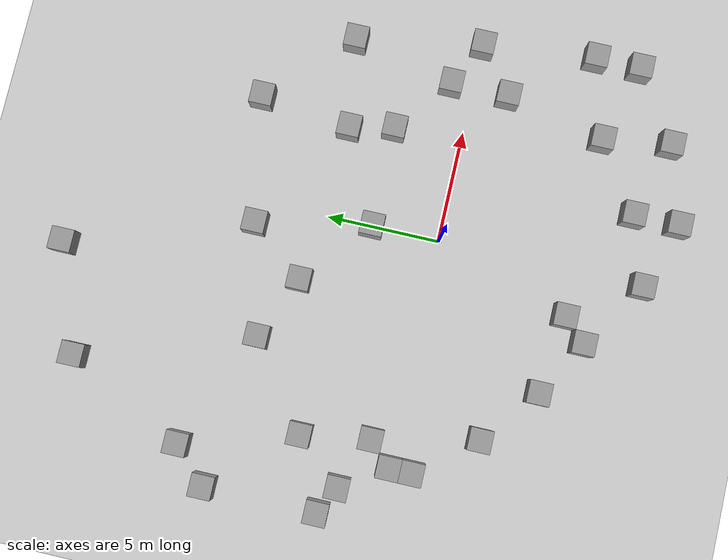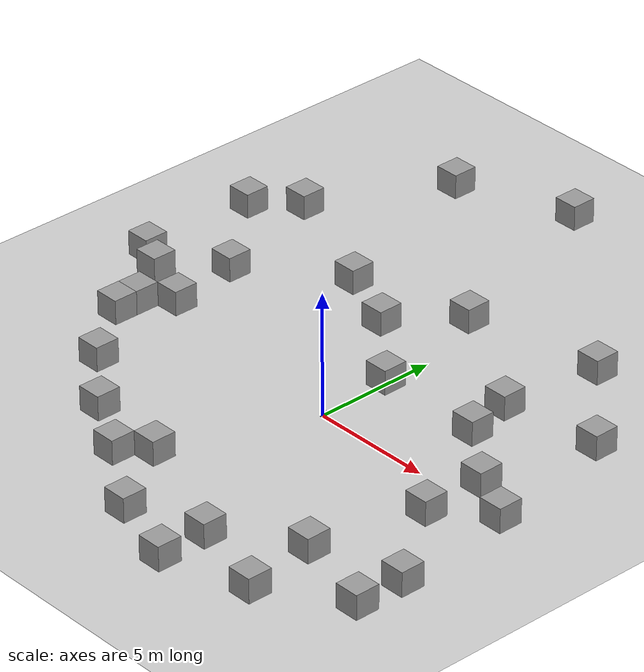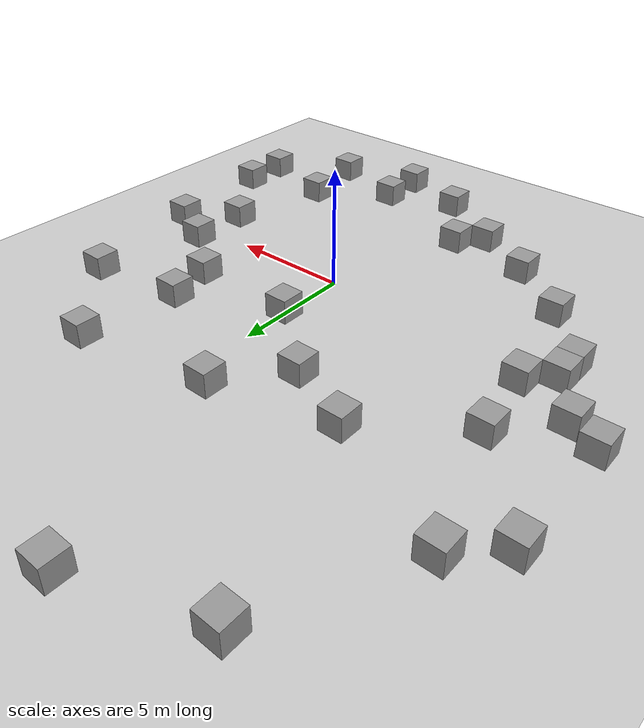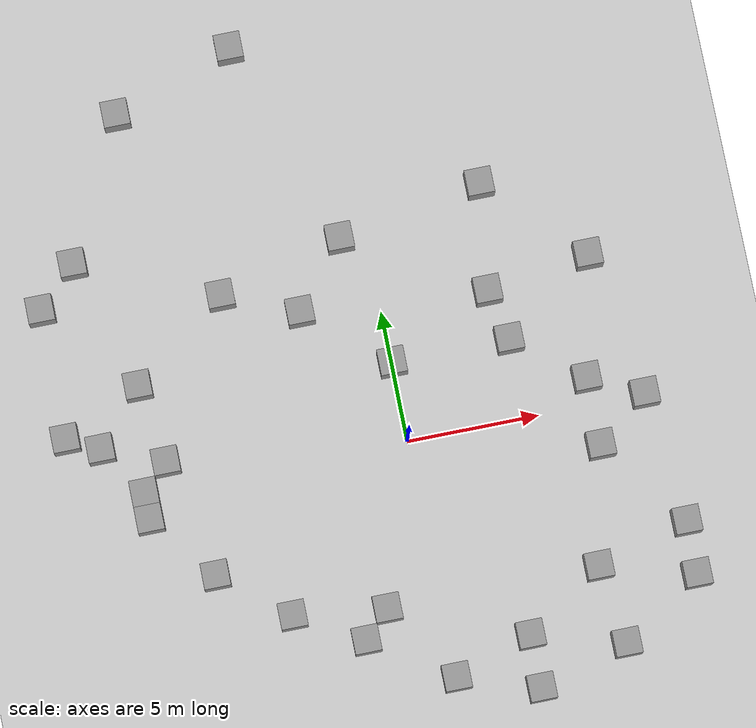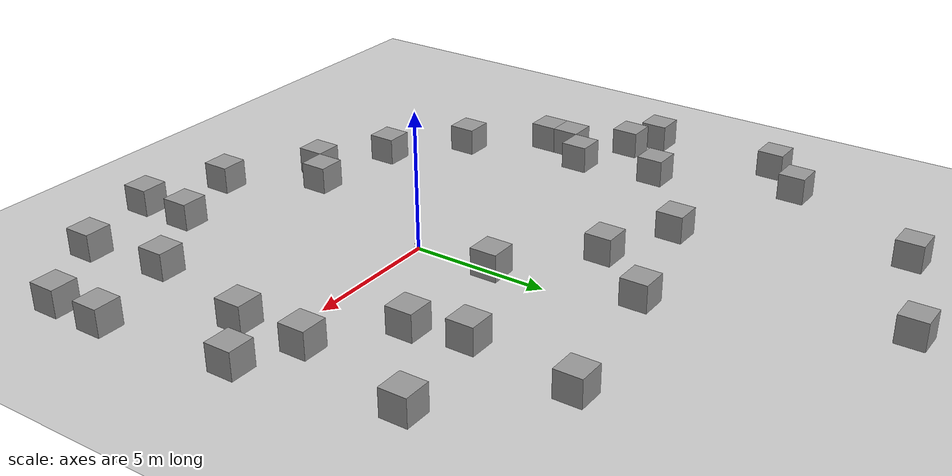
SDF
<sdf version="1.7">
 <world name="default">
  <light name="sun" type="directional">
   <pose>0 0 10 0 -0 0</pose>
   <diffuse>0.8 0.8 0.8 1</diffuse>
   <specular>0.2 0.2 0.2 1</specular>
   <attenuation>
    <range>1000</range>
    <constant>0.9</constant>
    <linear>0.01</linear>
    <quadratic>0.001</quadratic>
   </attenuation>
   <direction>-0.5 0.1 -0.9</direction>
   <spot><inner_angle>0</inner_angle><outer_angle>0</outer_angle><falloff>0</falloff></spot>
  </light>
  <model name="ground_plane">
   <static>1</static>
   <link name="link">
    <collision name="collision">
     <geometry><plane><normal>0 0 1</normal><size>100 100</size></plane></geometry>
     <surface>
      <contact><collide_bitmask>65535</collide_bitmask></contact>
      <friction><ode><mu>100</mu><mu2>50</mu2></ode></friction>
     </surface>
    </collision>
    <visual name="visual">
     <cast_shadows>0</cast_shadows>
     <geometry><plane><normal>0 0 1</normal><size>100 100</size></plane></geometry>
     <material>
      <script><uri>file://media/materials/scripts/gazebo.material</uri><name>Gazebo/Grey</name></script>
     </material>
    </visual>
   </link>
  </model>
  <gravity>0 0 -9.8</gravity>
  <magnetic_field>6e-06 2.3e-05 -4.2e-05</magnetic_field>
  <atmosphere type="adiabatic"/>
  <physics type="ode">
   <max_step_size>0.001</max_step_size>
   <real_time_factor>1</real_time_factor>
   <real_time_update_rate>1000</real_time_update_rate>
  </physics>
  <scene><ambient>0.4 0.4 0.4 1</ambient><background>0.7 0.7 0.7 1</background><shadows>1</shadows></scene>
  <audio><device>default</device></audio>
  <spherical_coordinates>
   <surface_model>EARTH_WGS84</surface_model>
   <latitude_deg>0</latitude_deg>
   <longitude_deg>0</longitude_deg>
   <elevation>0</elevation>
   <heading_deg>0</heading_deg>
  </spherical_coordinates>
  <model name="test_bot">
   <link name="base_link">
    <inertial>
     <pose>0.118143 0 0.083857 0 -0 0</pose>
     <mass>0.7</mass>
     <inertia>
      <ixx>0.00964782</ixx>
      <ixy>0</ixy>
      <ixz>0.000191086</ixz>
      <iyy>0.0097333</iyy>
      <iyz>0</iyz>
      <izz>0.0102105</izz>
     </inertia>
    </inertial>
    <collision name="base_link_fixed_joint_lump__chassis_collision">
     <pose>0.125 0 0.075 0 -0 0</pose>
     <geometry><box><size>0.3 0.3 0.15</size></box></geometry>
    </collision>
    <collision name="base_link_fixed_joint_lump__caster_wheel_collision_1">
     <pose>0.105 0 0 0 -0 0</pose>
     <geometry><sphere><radius>0.03</radius></sphere></geometry>
     <surface><friction><ode><mu>0.001</mu><mu2>0.001</mu2></ode></friction></surface>
    </collision>
    <collision name="base_link_fixed_joint_lump__laser_frame_collision_2">
     <pose>0.097 0 0.212 0 -0 0</pose>
     <geometry><cylinder><length>0.04</length><radius>0.05</radius></cylinder></geometry>
    </collision>
    <visual name="base_link_fixed_joint_lump__chassis_visual">
     <pose>0.065 0 0.035 0 -0 0</pose>
     <geometry><box><size>0.18 0.18 0.07</size></box></geometry>
     <material>
      <script><name>Gazebo/White</name><uri>file://media/materials/scripts/gazebo.material</uri></script>
     </material>
    </visual>
    <visual name="base_link_fixed_joint_lump__caster_wheel_visual_1">
     <pose>0.105 0 0 0 -0 0</pose>
     <geometry><sphere><radius>0.03</radius></sphere></geometry>
     <material>
      <script><name>Gazebo/Black</name><uri>file://media/materials/scripts/gazebo.material</uri></script>
     </material>
    </visual>
    <visual name="base_link_fixed_joint_lump__laser_frame_visual_2">
     <pose>0.097 0 0.212 0 -0 0</pose>
     <geometry><cylinder><length>0.04</length><radius>0.05</radius></cylinder></geometry>
     <material>
      <script><name>Gazebo/Black</name><uri>file://media/materials/scripts/gazebo.material</uri></script>
     </material>
    </visual>
    <visual name="base_link_fixed_joint_lump__laser_frame_visual_3">
     <pose>0.097 0 0.162 0 -0 0</pose>
     <geometry><cylinder><length>0.1</length><radius>0.01</radius></cylinder></geometry>
     <material>
      <script><name>Gazebo/Black</name><uri>file://media/materials/scripts/gazebo.material</uri></script>
     </material>
    </visual>
    <sensor name="laser" type="ray">
     <visualize>1</visualize>
     <update_rate>30</update_rate>
     <ray>
      <scan>
       <horizontal>
        <samples>360</samples>
        <min_angle>-3.14</min_angle>
        <max_angle>3.14</max_angle>
        <resolution>1</resolution>
       </horizontal>
       <vertical><samples>1</samples><min_angle>0</min_angle><max_angle>0</max_angle></vertical>
      </scan>
      <range><min>0.3</min><max>25</max></range>
     </ray>
     <plugin name="laser_controller" filename="libgazebo_ros_ray_sensor.so">
      <ros><argument>~/out:=scan</argument></ros>
      <output_type>sensor_msgs/LaserScan</output_type>
      <frame_name>laser_frame</frame_name>
     </plugin>
     <pose>0.097 0 0.212 0 -0 0</pose>
    </sensor>
   </link>
   <joint name="left_wheel_joint" type="revolute">
    <pose relative_to="base_link">0 0.105 0 -1.5708 0 0</pose>
    <parent>base_link</parent>
    <child>left_wheel</child>
    <axis>
     <xyz>0 0 1</xyz>
     <limit><lower>-1e+16</lower><upper>1e+16</upper></limit>
     <dynamics><spring_reference>0</spring_reference><spring_stiffness>0</spring_stiffness></dynamics>
    </axis>
   </joint>
   <link name="left_wheel">
    <pose relative_to="left_wheel_joint">0 0 0 0 -0 0</pose>
    <inertial>
     <mass>0.1</mass>
     <inertia>
      <ixx>2.77083e-05</ixx>
      <ixy>0</ixy>
      <ixz>0</ixz>
      <iyy>2.77083e-05</iyy>
      <iyz>0</iyz>
      <izz>4.5e-05</izz>
     </inertia>
    </inertial>
    <collision name="left_wheel_collision">
     <geometry><cylinder><length>0.025</length><radius>0.03</radius></cylinder></geometry>
    </collision>
    <visual name="left_wheel_visual">
     <geometry><cylinder><length>0.025</length><radius>0.03</radius></cylinder></geometry>
     <material>
      <script><name>Gazebo/Blue</name><uri>file://media/materials/scripts/gazebo.material</uri></script>
     </material>
    </visual>
   </link>
   <joint name="right_wheel_joint" type="revolute">
    <pose relative_to="base_link">0 -0.105 0 1.5708 -0 0</pose>
    <parent>base_link</parent>
    <child>right_wheel</child>
    <axis>
     <xyz>0 0 -1</xyz>
     <limit><lower>-1e+16</lower><upper>1e+16</upper></limit>
     <dynamics><spring_reference>0</spring_reference><spring_stiffness>0</spring_stiffness></dynamics>
    </axis>
   </joint>
   <link name="right_wheel">
    <pose relative_to="right_wheel_joint">0 0 0 0 -0 0</pose>
    <inertial>
     <mass>0.1</mass>
     <inertia>
      <ixx>2.77083e-05</ixx>
      <ixy>0</ixy>
      <ixz>0</ixz>
      <iyy>2.77083e-05</iyy>
      <iyz>0</iyz>
      <izz>4.5e-05</izz>
     </inertia>
    </inertial>
    <collision name="right_wheel_collision">
     <geometry><cylinder><length>0.025</length><radius>0.03</radius></cylinder></geometry>
    </collision>
    <visual name="right_wheel_visual">
     <geometry><cylinder><length>0.025</length><radius>0.03</radius></cylinder></geometry>
     <material>
      <script><name>Gazebo/Blue</name><uri>file://media/materials/scripts/gazebo.material</uri></script>
     </material>
    </visual>
   </link>
   <static>0</static>
   <plugin name="gazebo_ros2_control" filename="libgazebo_ros2_control.so">
    <parameters>/home/pritesh/club_ws/install/Test_bot/share/Test_bot/config/my_controllers.yaml</parameters>
   </plugin>
   <pose>0.018447 0.000506 0.030009 -6e-05 9e-05 -0.020323</pose>
  </model>
  <model name="unit_box">
   <pose>-11.2927 1.93514 0.499995 0 1e-05 0</pose>
   <link name="link">
    <inertial>
     <mass>1</mass>
     <inertia>
      <ixx>0.166667</ixx>
      <ixy>0</ixy>
      <ixz>0</ixz>
      <iyy>0.166667</iyy>
      <iyz>0</iyz>
      <izz>0.166667</izz>
     </inertia>
    </inertial>
    <collision name="collision"><geometry><box><size>1 1 1</size></box></geometry></collision>
    <visual name="visual">
     <geometry><box><size>1 1 1</size></box></geometry>
     <material>
      <script><name>Gazebo/Grey</name><uri>file://media/materials/scripts/gazebo.material</uri></script>
     </material>
    </visual>
   </link>
  </model>
  <model name="unit_box_0">
   <pose>-12.4999 7.51224 0.499995 -1e-05 -0 -0</pose>
   <link name="link">
    <inertial>
     <mass>1</mass>
     <inertia>
      <ixx>0.166667</ixx>
      <ixy>0</ixy>
      <ixz>0</ixz>
      <iyy>0.166667</iyy>
      <iyz>0</iyz>
      <izz>0.166667</izz>
     </inertia>
    </inertial>
    <collision name="collision"><geometry><box><size>1 1 1</size></box></geometry></collision>
    <visual name="visual">
     <geometry><box><size>1 1 1</size></box></geometry>
     <material>
      <script><name>Gazebo/Grey</name><uri>file://media/materials/scripts/gazebo.material</uri></script>
     </material>
    </visual>
   </link>
  </model>
  <model name="unit_box_1">
   <pose>-3.66472 15.9303 0.499995 0 1e-05 0</pose>
   <link name="link">
    <inertial>
     <mass>1</mass>
     <inertia>
      <ixx>0.166667</ixx>
      <ixy>0</ixy>
      <ixz>0</ixz>
      <iyy>0.166667</iyy>
      <iyz>0</iyz>
      <izz>0.166667</izz>
     </inertia>
    </inertial>
    <collision name="collision"><geometry><box><size>1 1 1</size></box></geometry></collision>
    <visual name="visual">
     <geometry><box><size>1 1 1</size></box></geometry>
     <material>
      <script><name>Gazebo/Grey</name><uri>file://media/materials/scripts/gazebo.material</uri></script>
     </material>
    </visual>
   </link>
  </model>
  <model name="unit_box_2">
   <pose>-8.33137 14.2576 0.499995 -1e-05 -0 -0</pose>
   <link name="link">
    <inertial>
     <mass>1</mass>
     <inertia>
      <ixx>0.166667</ixx>
      <ixy>0</ixy>
      <ixz>0</ixz>
      <iyy>0.166667</iyy>
      <iyz>0</iyz>
      <izz>0.166667</izz>
     </inertia>
    </inertial>
    <collision name="collision"><geometry><box><size>1 1 1</size></box></geometry></collision>
    <visual name="visual">
     <geometry><box><size>1 1 1</size></box></geometry>
     <material>
      <script><name>Gazebo/Grey</name><uri>file://media/materials/scripts/gazebo.material</uri></script>
     </material>
    </visual>
   </link>
  </model>
  <model name="unit_box_3">
   <pose>-5.79587 6.74365 0.499995 0 1e-05 0</pose>
   <link name="link">
    <inertial>
     <mass>1</mass>
     <inertia>
      <ixx>0.166667</ixx>
      <ixy>0</ixy>
      <ixz>0</ixz>
      <iyy>0.166667</iyy>
      <iyz>0</iyz>
      <izz>0.166667</izz>
     </inertia>
    </inertial>
    <collision name="collision"><geometry><box><size>1 1 1</size></box></geometry></collision>
    <visual name="visual">
     <geometry><box><size>1 1 1</size></box></geometry>
     <material>
      <script><name>Gazebo/Grey</name><uri>file://media/materials/scripts/gazebo.material</uri></script>
     </material>
    </visual>
   </link>
  </model>
  <model name="unit_box_4">
   <pose>4.04052 4.95338 0.499995 -1e-05 -0 -0</pose>
   <link name="link">
    <inertial>
     <mass>1</mass>
     <inertia>
      <ixx>0.166667</ixx>
      <ixy>0</ixy>
      <ixz>0</ixz>
      <iyy>0.166667</iyy>
      <iyz>0</iyz>
      <izz>0.166667</izz>
     </inertia>
    </inertial>
    <collision name="collision"><geometry><box><size>1 1 1</size></box></geometry></collision>
    <visual name="visual">
     <geometry><box><size>1 1 1</size></box></geometry>
     <material>
      <script><name>Gazebo/Grey</name><uri>file://media/materials/scripts/gazebo.material</uri></script>
     </material>
    </visual>
   </link>
  </model>
  <model name="unit_box_4_clone">
   <pose>7 1.00001 0.499995 0 -1e-05 0</pose>
   <link name="link">
    <inertial>
     <mass>1</mass>
     <inertia>
      <ixx>0.166667</ixx>
      <ixy>0</ixy>
      <ixz>0</ixz>
      <iyy>0.166667</iyy>
      <iyz>0</iyz>
      <izz>0.166667</izz>
     </inertia>
    </inertial>
    <collision name="collision"><geometry><box><size>1 1 1</size></box></geometry></collision>
    <visual name="visual">
     <geometry><box><size>1 1 1</size></box></geometry>
     <material>
      <script><name>Gazebo/Grey</name><uri>file://media/materials/scripts/gazebo.material</uri></script>
     </material>
    </visual>
   </link>
  </model>
  <model name="unit_box_4_clone_0">
   <pose>7 -1.57019 0.499995 -1e-05 -0 -0</pose>
   <link name="link">
    <inertial>
     <mass>1</mass>
     <inertia>
      <ixx>0.166667</ixx>
      <ixy>0</ixy>
      <ixz>0</ixz>
      <iyy>0.166667</iyy>
      <iyz>0</iyz>
      <izz>0.166667</izz>
     </inertia>
    </inertial>
    <collision name="collision"><geometry><box><size>1 1 1</size></box></geometry></collision>
    <visual name="visual">
     <geometry><box><size>1 1 1</size></box></geometry>
     <material>
      <script><name>Gazebo/Grey</name><uri>file://media/materials/scripts/gazebo.material</uri></script>
     </material>
    </visual>
   </link>
  </model>
  <model name="unit_box_4_clone_1">
   <pose>6 -6 0.499995 0 1e-05 0</pose>
   <link name="link">
    <inertial>
     <mass>1</mass>
     <inertia>
      <ixx>0.166667</ixx>
      <ixy>0</ixy>
      <ixz>0</ixz>
      <iyy>0.166667</iyy>
      <iyz>0</iyz>
      <izz>0.166667</izz>
     </inertia>
    </inertial>
    <collision name="collision"><geometry><box><size>1 1 1</size></box></geometry></collision>
    <visual name="visual">
     <geometry><box><size>1 1 1</size></box></geometry>
     <material>
      <script><name>Gazebo/Grey</name><uri>file://media/materials/scripts/gazebo.material</uri></script>
     </material>
    </visual>
   </link>
  </model>
  <model name="unit_box_4_clone_2">
   <pose>3 -9.99999 0.499995 -1e-05 0 0</pose>
   <link name="link">
    <inertial>
     <mass>1</mass>
     <inertia>
      <ixx>0.166667</ixx>
      <ixy>0</ixy>
      <ixz>0</ixz>
      <iyy>0.166667</iyy>
      <iyz>0</iyz>
      <izz>0.166667</izz>
     </inertia>
    </inertial>
    <collision name="collision"><geometry><box><size>1 1 1</size></box></geometry></collision>
    <visual name="visual">
     <geometry><box><size>1 1 1</size></box></geometry>
     <material>
      <script><name>Gazebo/Grey</name><uri>file://media/materials/scripts/gazebo.material</uri></script>
     </material>
    </visual>
   </link>
  </model>
  <model name="unit_box_4_clone_3">
   <pose>-5e-06 -9 0.499995 0 -1e-05 0</pose>
   <link name="link">
    <inertial>
     <mass>1</mass>
     <inertia>
      <ixx>0.166667</ixx>
      <ixy>0</ixy>
      <ixz>0</ixz>
      <iyy>0.166667</iyy>
      <iyz>0</iyz>
      <izz>0.166667</izz>
     </inertia>
    </inertial>
    <collision name="collision"><geometry><box><size>1 1 1</size></box></geometry></collision>
    <visual name="visual">
     <geometry><box><size>1 1 1</size></box></geometry>
     <material>
      <script><name>Gazebo/Grey</name><uri>file://media/materials/scripts/gazebo.material</uri></script>
     </material>
    </visual>
   </link>
  </model>
  <model name="unit_box_4_clone_4">
   <pose>-3 -6.99999 0.499995 -1e-05 -0 -0</pose>
   <link name="link">
    <inertial>
     <mass>1</mass>
     <inertia>
      <ixx>0.166667</ixx>
      <ixy>0</ixy>
      <ixz>0</ixz>
      <iyy>0.166667</iyy>
      <iyz>0</iyz>
      <izz>0.166667</izz>
     </inertia>
    </inertial>
    <collision name="collision"><geometry><box><size>1 1 1</size></box></geometry></collision>
    <visual name="visual">
     <geometry><box><size>1 1 1</size></box></geometry>
     <material>
      <script><name>Gazebo/Grey</name><uri>file://media/materials/scripts/gazebo.material</uri></script>
     </material>
    </visual>
   </link>
  </model>
  <model name="unit_box_4_clone_5">
   <pose>-5.49369 -5.56154 0.499995 0 1e-05 0</pose>
   <link name="link">
    <inertial>
     <mass>1</mass>
     <inertia>
      <ixx>0.166667</ixx>
      <ixy>0</ixy>
      <ixz>0</ixz>
      <iyy>0.166667</iyy>
      <iyz>0</iyz>
      <izz>0.166667</izz>
     </inertia>
    </inertial>
    <collision name="collision"><geometry><box><size>1 1 1</size></box></geometry></collision>
    <visual name="visual">
     <geometry><box><size>1 1 1</size></box></geometry>
     <material>
      <script><name>Gazebo/Grey</name><uri>file://media/materials/scripts/gazebo.material</uri></script>
     </material>
    </visual>
   </link>
  </model>
  <model name="unit_box_4_clone_6">
   <pose>-8 -3.53379 0.499995 -1e-05 0 0</pose>
   <link name="link">
    <inertial>
     <mass>1</mass>
     <inertia>
      <ixx>0.166667</ixx>
      <ixy>0</ixy>
      <ixz>0</ixz>
      <iyy>0.166667</iyy>
      <iyz>0</iyz>
      <izz>0.166667</izz>
     </inertia>
    </inertial>
    <collision name="collision"><geometry><box><size>1 1 1</size></box></geometry></collision>
    <visual name="visual">
     <geometry><box><size>1 1 1</size></box></geometry>
     <material>
      <script><name>Gazebo/Grey</name><uri>file://media/materials/scripts/gazebo.material</uri></script>
     </material>
    </visual>
   </link>
  </model>
  <model name="unit_box_4_clone_7">
   <pose>-10 -1e-06 0.499995 0 1e-05 5e-06</pose>
   <link name="link">
    <inertial>
     <mass>1</mass>
     <inertia>
      <ixx>0.166667</ixx>
      <ixy>0</ixy>
      <ixz>0</ixz>
      <iyy>0.166667</iyy>
      <iyz>0</iyz>
      <izz>0.166667</izz>
     </inertia>
    </inertial>
    <collision name="collision"><geometry><box><size>1 1 1</size></box></geometry></collision>
    <visual name="visual">
     <geometry><box><size>1 1 1</size></box></geometry>
     <material>
      <script><name>Gazebo/Grey</name><uri>file://media/materials/scripts/gazebo.material</uri></script>
     </material>
    </visual>
   </link>
  </model>
  <model name="unit_box_4_clone_8">
   <pose>-9.00001 1 0.499995 0 -1e-05 -1.1e-05</pose>
   <link name="link">
    <inertial>
     <mass>1</mass>
     <inertia>
      <ixx>0.166667</ixx>
      <ixy>0</ixy>
      <ixz>0</ixz>
      <iyy>0.166667</iyy>
      <iyz>0</iyz>
      <izz>0.166667</izz>
     </inertia>
    </inertial>
    <collision name="collision"><geometry><box><size>1 1 1</size></box></geometry></collision>
    <visual name="visual">
     <geometry><box><size>1 1 1</size></box></geometry>
     <material>
      <script><name>Gazebo/Grey</name><uri>file://media/materials/scripts/gazebo.material</uri></script>
     </material>
    </visual>
   </link>
  </model>
  <model name="unit_box_4_clone_9">
   <pose>-3 5.54411 0.499995 0 1e-05 0</pose>
   <link name="link">
    <inertial>
     <mass>1</mass>
     <inertia>
      <ixx>0.166667</ixx>
      <ixy>0</ixy>
      <ixz>0</ixz>
      <iyy>0.166667</iyy>
      <iyz>0</iyz>
      <izz>0.166667</izz>
     </inertia>
    </inertial>
    <collision name="collision"><geometry><box><size>1 1 1</size></box></geometry></collision>
    <visual name="visual">
     <geometry><box><size>1 1 1</size></box></geometry>
     <material>
      <script><name>Gazebo/Grey</name><uri>file://media/materials/scripts/gazebo.material</uri></script>
     </material>
    </visual>
   </link>
  </model>
  <model name="unit_box_4_clone_10">
   <pose>-1 8.00001 0.499995 -1e-05 0 0</pose>
   <link name="link">
    <inertial>
     <mass>1</mass>
     <inertia>
      <ixx>0.166667</ixx>
      <ixy>0</ixy>
      <ixz>0</ixz>
      <iyy>0.166667</iyy>
      <iyz>0</iyz>
      <izz>0.166667</izz>
     </inertia>
    </inertial>
    <collision name="collision"><geometry><box><size>1 1 1</size></box></geometry></collision>
    <visual name="visual">
     <geometry><box><size>1 1 1</size></box></geometry>
     <material>
      <script><name>Gazebo/Grey</name><uri>file://media/materials/scripts/gazebo.material</uri></script>
     </material>
    </visual>
   </link>
  </model>
  <model name="unit_box_4_clone_11">
   <pose>4.55814 9 0.499995 0 -1e-05 0</pose>
   <link name="link">
    <inertial>
     <mass>1</mass>
     <inertia>
      <ixx>0.166667</ixx>
      <ixy>0</ixy>
      <ixz>0</ixz>
      <iyy>0.166667</iyy>
      <iyz>0</iyz>
      <izz>0.166667</izz>
     </inertia>
    </inertial>
    <collision name="collision"><geometry><box><size>1 1 1</size></box></geometry></collision>
    <visual name="visual">
     <geometry><box><size>1 1 1</size></box></geometry>
     <material>
      <script><name>Gazebo/Grey</name><uri>file://media/materials/scripts/gazebo.material</uri></script>
     </material>
    </visual>
   </link>
  </model>
  <model name="unit_box_4_clone_12">
   <pose>-0 3.00001 0.499995 -1e-05 -0 -0</pose>
   <link name="link">
    <inertial>
     <mass>1</mass>
     <inertia>
      <ixx>0.166667</ixx>
      <ixy>0</ixy>
      <ixz>0</ixz>
      <iyy>0.166667</iyy>
      <iyz>0</iyz>
      <izz>0.166667</izz>
     </inertia>
    </inertial>
    <collision name="collision"><geometry><box><size>1 1 1</size></box></geometry></collision>
    <visual name="visual">
     <geometry><box><size>1 1 1</size></box></geometry>
     <material>
      <script><name>Gazebo/Grey</name><uri>file://media/materials/scripts/gazebo.material</uri></script>
     </material>
    </visual>
   </link>
  </model>
  <model name="unit_box_4_clone_13">
   <pose>4.46258 3.00001 0.499995 -1e-05 0 0</pose>
   <link name="link">
    <inertial>
     <mass>1</mass>
     <inertia>
      <ixx>0.166667</ixx>
      <ixy>0</ixy>
      <ixz>0</ixz>
      <iyy>0.166667</iyy>
      <iyz>0</iyz>
      <izz>0.166667</izz>
     </inertia>
    </inertial>
    <collision name="collision"><geometry><box><size>1 1 1</size></box></geometry></collision>
    <visual name="visual">
     <geometry><box><size>1 1 1</size></box></geometry>
     <material>
      <script><name>Gazebo/Grey</name><uri>file://media/materials/scripts/gazebo.material</uri></script>
     </material>
    </visual>
   </link>
  </model>
  <model name="unit_box_4_clone_14">
   <pose>8 5.55044 0.499995 0 -1e-05 0</pose>
   <link name="link">
    <inertial>
     <mass>1</mass>
     <inertia>
      <ixx>0.166667</ixx>
      <ixy>0</ixy>
      <ixz>0</ixz>
      <iyy>0.166667</iyy>
      <iyz>0</iyz>
      <izz>0.166667</izz>
     </inertia>
    </inertial>
    <collision name="collision"><geometry><box><size>1 1 1</size></box></geometry></collision>
    <visual name="visual">
     <geometry><box><size>1 1 1</size></box></geometry>
     <material>
      <script><name>Gazebo/Grey</name><uri>file://media/materials/scripts/gazebo.material</uri></script>
     </material>
    </visual>
   </link>
  </model>
  <model name="unit_box_4_clone_15">
   <pose>9.54027 -4.99999 0.499995 -1e-05 -0 -0</pose>
   <link name="link">
    <inertial>
     <mass>1</mass>
     <inertia>
      <ixx>0.166667</ixx>
      <ixy>0</ixy>
      <ixz>0</ixz>
      <iyy>0.166667</iyy>
      <iyz>0</iyz>
      <izz>0.166667</izz>
     </inertia>
    </inertial>
    <collision name="collision"><geometry><box><size>1 1 1</size></box></geometry></collision>
    <visual name="visual">
     <geometry><box><size>1 1 1</size></box></geometry>
     <material>
      <script><name>Gazebo/Grey</name><uri>file://media/materials/scripts/gazebo.material</uri></script>
     </material>
    </visual>
   </link>
  </model>
  <model name="unit_box_4_clone_16">
   <pose>6.42773 -8.99999 0.499995 -1e-05 0 0</pose>
   <link name="link">
    <inertial>
     <mass>1</mass>
     <inertia>
      <ixx>0.166667</ixx>
      <ixy>0</ixy>
      <ixz>0</ixz>
      <iyy>0.166667</iyy>
      <iyz>0</iyz>
      <izz>0.166667</izz>
     </inertia>
    </inertial>
    <collision name="collision"><geometry><box><size>1 1 1</size></box></geometry></collision>
    <visual name="visual">
     <geometry><box><size>1 1 1</size></box></geometry>
     <material>
      <script><name>Gazebo/Grey</name><uri>file://media/materials/scripts/gazebo.material</uri></script>
     </material>
    </visual>
   </link>
  </model>
  <model name="unit_box_4_clone_17">
   <pose>3 -7.99999 0.499995 -1e-05 -0 -0</pose>
   <link name="link">
    <inertial>
     <mass>1</mass>
     <inertia>
      <ixx>0.166667</ixx>
      <ixy>0</ixy>
      <ixz>0</ixz>
      <iyy>0.166667</iyy>
      <iyz>0</iyz>
      <izz>0.166667</izz>
     </inertia>
    </inertial>
    <collision name="collision"><geometry><box><size>1 1 1</size></box></geometry></collision>
    <visual name="visual">
     <geometry><box><size>1 1 1</size></box></geometry>
     <material>
      <script><name>Gazebo/Grey</name><uri>file://media/materials/scripts/gazebo.material</uri></script>
     </material>
    </visual>
   </link>
  </model>
  <model name="unit_box_4_clone_18">
   <pose>-2 -5.99999 0.499995 -1e-05 0 0</pose>
   <link name="link">
    <inertial>
     <mass>1</mass>
     <inertia>
      <ixx>0.166667</ixx>
      <ixy>0</ixy>
      <ixz>0</ixz>
      <iyy>0.166667</iyy>
      <iyz>0</iyz>
      <izz>0.166667</izz>
     </inertia>
    </inertial>
    <collision name="collision"><geometry><box><size>1 1 1</size></box></geometry></collision>
    <visual name="visual">
     <geometry><box><size>1 1 1</size></box></geometry>
     <material>
      <script><name>Gazebo/Grey</name><uri>file://media/materials/scripts/gazebo.material</uri></script>
     </material>
    </visual>
   </link>
  </model>
  <model name="unit_box_4_clone_19">
   <pose>-9.47672 4 0.499995 0 1e-05 0</pose>
   <link name="link">
    <inertial>
     <mass>1</mass>
     <inertia>
      <ixx>0.166667</ixx>
      <ixy>0</ixy>
      <ixz>0</ixz>
      <iyy>0.166667</iyy>
      <iyz>0</iyz>
      <izz>0.166667</izz>
     </inertia>
    </inertial>
    <collision name="collision"><geometry><box><size>1 1 1</size></box></geometry></collision>
    <visual name="visual">
     <geometry><box><size>1 1 1</size></box></geometry>
     <material>
      <script><name>Gazebo/Grey</name><uri>file://media/materials/scripts/gazebo.material</uri></script>
     </material>
    </visual>
   </link>
  </model>
  <model name="unit_box_4_clone_20">
   <pose>-10 -1 0.499995 0 -1e-05 5e-06</pose>
   <link name="link">
    <inertial>
     <mass>1</mass>
     <inertia>
      <ixx>0.166667</ixx>
      <ixy>0</ixy>
      <ixz>0</ixz>
      <iyy>0.166667</iyy>
      <iyz>0</iyz>
      <izz>0.166667</izz>
     </inertia>
    </inertial>
    <collision name="collision"><geometry><box><size>1 1 1</size></box></geometry></collision>
    <visual name="visual">
     <geometry><box><size>1 1 1</size></box></geometry>
     <material>
      <script><name>Gazebo/Grey</name><uri>file://media/materials/scripts/gazebo.material</uri></script>
     </material>
    </visual>
   </link>
  </model>
  <model name="unit_box_4_clone_21">
   <pose>-12.5033 2.56317 0.499995 1e-05 -0 0</pose>
   <link name="link">
    <inertial>
     <mass>1</mass>
     <inertia>
      <ixx>0.166667</ixx>
      <ixy>0</ixy>
      <ixz>0</ixz>
      <iyy>0.166667</iyy>
      <iyz>0</iyz>
      <izz>0.166667</izz>
     </inertia>
    </inertial>
    <collision name="collision"><geometry><box><size>1 1 1</size></box></geometry></collision>
    <visual name="visual">
     <geometry><box><size>1 1 1</size></box></geometry>
     <material>
      <script><name>Gazebo/Grey</name><uri>file://media/materials/scripts/gazebo.material</uri></script>
     </material>
    </visual>
   </link>
  </model>
  <model name="unit_box_4_clone_22">
   <pose>-11 9 0.499995 0 -1e-05 0</pose>
   <link name="link">
    <inertial>
     <mass>1</mass>
     <inertia>
      <ixx>0.166667</ixx>
      <ixy>0</ixy>
      <ixz>0</ixz>
      <iyy>0.166667</iyy>
      <iyz>0</iyz>
      <izz>0.166667</izz>
     </inertia>
    </inertial>
    <collision name="collision"><geometry><box><size>1 1 1</size></box></geometry></collision>
    <visual name="visual">
     <geometry><box><size>1 1 1</size></box></geometry>
     <material>
      <script><name>Gazebo/Grey</name><uri>file://media/materials/scripts/gazebo.material</uri></script>
     </material>
    </visual>
   </link>
  </model>
  <model name="unit_box_4_clone_23">
   <pose>9.50709 -7 0.499995 1e-05 -0 0</pose>
   <link name="link">
    <inertial>
     <mass>1</mass>
     <inertia>
      <ixx>0.166667</ixx>
      <ixy>0</ixy>
      <ixz>0</ixz>
      <iyy>0.166667</iyy>
      <iyz>0</iyz>
      <izz>0.166667</izz>
     </inertia>
    </inertial>
    <collision name="collision"><geometry><box><size>1 1 1</size></box></geometry></collision>
    <visual name="visual">
     <geometry><box><size>1 1 1</size></box></geometry>
     <material>
      <script><name>Gazebo/Grey</name><uri>file://media/materials/scripts/gazebo.material</uri></script>
     </material>
    </visual>
   </link>
  </model>
  <model name="unit_box_4_clone_24">
   <pose>9 5e-06 0.499995 0 -1e-05 0</pose>
   <link name="link">
    <inertial>
     <mass>1</mass>
     <inertia>
      <ixx>0.166667</ixx>
      <ixy>0</ixy>
      <ixz>0</ixz>
      <iyy>0.166667</iyy>
      <iyz>0</iyz>
      <izz>0.166667</izz>
     </inertia>
    </inertial>
    <collision name="collision"><geometry><box><size>1 1 1</size></box></geometry></collision>
    <visual name="visual">
     <geometry><box><size>1 1 1</size></box></geometry>
     <material>
      <script><name>Gazebo/Grey</name><uri>file://media/materials/scripts/gazebo.material</uri></script>
     </material>
    </visual>
   </link>
  </model>
 </world>
</sdf>
